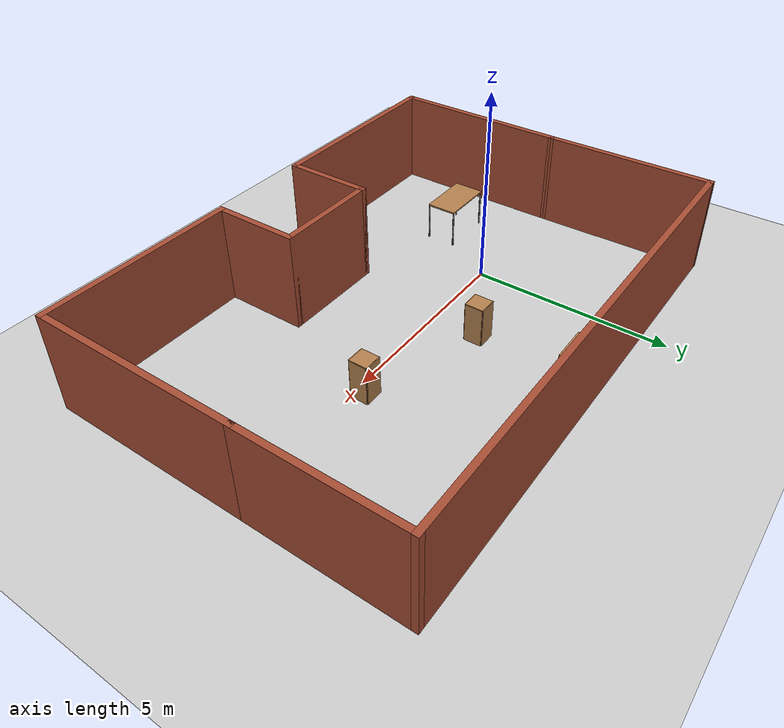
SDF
<sdf version="1.6">
 <world name="default">
  <light name="sun" type="directional">
   <pose>0 0 10 0 -0 0</pose>
   <diffuse>0.8 0.8 0.8 1</diffuse>
   <specular>0.1 0.1 0.1 1</specular>
   <attenuation>
    <range>1000</range>
    <constant>0.9</constant>
    <linear>0.01</linear>
    <quadratic>0.001</quadratic>
   </attenuation>
   <direction>-0.5 0.5 -1</direction>
  </light>
  <model name="ground_plane">
   <static>1</static>
   <link name="link">
    <collision name="collision">
     <geometry><plane><normal>0 0 1</normal><size>100 100</size></plane></geometry>
     <surface><friction><ode><mu>100</mu><mu2>50</mu2></ode></friction></surface>
    </collision>
    <visual name="visual">
     <cast_shadows>0</cast_shadows>
     <geometry><plane><normal>0 0 1</normal><size>100 100</size></plane></geometry>
     <material>
      <script><uri>file://media/materials/scripts/gazebo.material</uri><name>Gazebo/Grey</name></script>
     </material>
    </visual>
   </link>
  </model>
  <gravity>0 0 -9.8</gravity>
  <magnetic_field>6e-06 2.3e-05 -4.2e-05</magnetic_field>
  <atmosphere type="adiabatic"/>
  <physics name="default_physics" default="0" type="ode">
   <max_step_size>0.001</max_step_size>
   <real_time_factor>1</real_time_factor>
   <real_time_update_rate>1000</real_time_update_rate>
  </physics>
  <scene><ambient>0.4 0.4 0.4 1</ambient><background>0.7 0.7 0.7 1</background><shadows>1</shadows></scene>
  <spherical_coordinates>
   <surface_model>EARTH_WGS84</surface_model>
   <latitude_deg>0</latitude_deg>
   <longitude_deg>0</longitude_deg>
   <elevation>0</elevation>
   <heading_deg>0</heading_deg>
  </spherical_coordinates>
  <model name="WorldFour.world">
   <pose>2.80593 -0.15386 0 0 -0 0</pose>
   <link name="Wall_0">
    <collision name="Wall_0_Collision">
     <geometry><box><size>4.75 0.15 2.5</size></box></geometry>
     <pose>0 0 1.25 0 -0 0</pose>
    </collision>
    <visual name="Wall_0_Visual">
     <pose>0 0 1.25 0 -0 0</pose>
     <geometry><box><size>4.75 0.15 2.5</size></box></geometry>
     <material>
      <script><uri>file://media/materials/scripts/gazebo.material</uri><name>Gazebo/Bricks</name></script>
      <ambient>1 1 1 1</ambient>
     </material>
    </visual>
    <pose>-6.24957 -2.15532 0 0 0 -1.5708</pose>
   </link>
   <link name="Wall_1">
    <collision name="Wall_1_Collision">
     <geometry><box><size>5.25 0.15 2.5</size></box></geometry>
     <pose>0 0 1.25 0 -0 0</pose>
    </collision>
    <visual name="Wall_1_Visual">
     <pose>0 0 1.25 0 -0 0</pose>
     <geometry><box><size>5.25 0.15 2.5</size></box></geometry>
     <material>
      <script><uri>file://media/materials/scripts/gazebo.material</uri><name>Gazebo/Bricks</name></script>
      <ambient>1 1 1 1</ambient>
     </material>
    </visual>
    <pose>-3.69957 -4.45532 0 0 -0 0</pose>
   </link>
   <link name="Wall_11">
    <collision name="Wall_11_Collision">
     <geometry><box><size>12.75 0.15 2.5</size></box></geometry>
     <pose>0 0 1.25 0 -0 0</pose>
    </collision>
    <visual name="Wall_11_Visual">
     <pose>0 0 1.25 0 -0 0</pose>
     <geometry><box><size>12.75 0.15 2.5</size></box></geometry>
     <material>
      <script><uri>file://media/materials/scripts/gazebo.material</uri><name>Gazebo/Bricks</name></script>
      <ambient>1 1 1 1</ambient>
     </material>
    </visual>
    <pose>0.000432 4.45445 0 0 -0 3.14159</pose>
   </link>
   <link name="Wall_12">
    <collision name="Wall_12_Collision">
     <geometry><box><size>4.46006 0.15 2.5</size></box></geometry>
     <pose>0 0 1.25 0 -0 0</pose>
    </collision>
    <visual name="Wall_12_Visual">
     <pose>0 0 1.25 0 -0 0</pose>
     <geometry><box><size>4.46006 0.15 2.5</size></box></geometry>
     <material>
      <script><uri>file://media/materials/scripts/gazebo.material</uri><name>Gazebo/Bricks</name></script>
      <ambient>1 1 1 1</ambient>
     </material>
    </visual>
    <pose>-6.27457 2.29957 0 0 0 -1.5592</pose>
   </link>
   <link name="Wall_2">
    <collision name="Wall_2_Collision">
     <geometry><box><size>2.25 0.15 2.5</size></box></geometry>
     <pose>0 0 1.25 0 -0 0</pose>
    </collision>
    <visual name="Wall_2_Visual">
     <pose>0 0 1.25 0 -0 0</pose>
     <geometry><box><size>2.25 0.15 2.5</size></box></geometry>
     <material>
      <script><uri>file://media/materials/scripts/gazebo.material</uri><name>Gazebo/Bricks</name></script>
      <ambient>1 1 1 1</ambient>
     </material>
    </visual>
    <pose>-1.14957 -3.40532 0 0 -0 1.5708</pose>
   </link>
   <link name="Wall_3">
    <collision name="Wall_3_Collision">
     <geometry><box><size>2.75 0.15 2.5</size></box></geometry>
     <pose>0 0 1.25 0 -0 0</pose>
    </collision>
    <visual name="Wall_3_Visual">
     <pose>0 0 1.25 0 -0 0</pose>
     <geometry><box><size>2.75 0.15 2.5</size></box></geometry>
     <material>
      <script><uri>file://media/materials/scripts/gazebo.material</uri><name>Gazebo/Bricks</name></script>
      <ambient>1 1 1 1</ambient>
     </material>
    </visual>
    <pose>0.150432 -2.35532 0 0 -0 0</pose>
   </link>
   <link name="Wall_4">
    <collision name="Wall_4_Collision">
     <geometry><box><size>2.25 0.15 2.5</size></box></geometry>
     <pose>0 0 1.25 0 -0 0</pose>
    </collision>
    <visual name="Wall_4_Visual">
     <pose>0 0 1.25 0 -0 0</pose>
     <geometry><box><size>2.25 0.15 2.5</size></box></geometry>
     <material>
      <script><uri>file://media/materials/scripts/gazebo.material</uri><name>Gazebo/Bricks</name></script>
      <ambient>1 1 1 1</ambient>
     </material>
    </visual>
    <pose>1.45043 -3.40532 0 0 0 -1.5708</pose>
   </link>
   <link name="Wall_5">
    <collision name="Wall_5_Collision">
     <geometry><box><size>5 0.15 2.5</size></box></geometry>
     <pose>0 0 1.25 0 -0 0</pose>
    </collision>
    <visual name="Wall_5_Visual">
     <pose>0 0 1.25 0 -0 0</pose>
     <geometry><box><size>5 0.15 2.5</size></box></geometry>
     <material>
      <script><uri>file://media/materials/scripts/gazebo.material</uri><name>Gazebo/Bricks</name></script>
      <ambient>1 1 1 1</ambient>
     </material>
    </visual>
    <pose>3.87543 -4.45532 0 0 -0 0</pose>
   </link>
   <link name="Wall_6">
    <collision name="Wall_6_Collision">
     <geometry><box><size>5.25 0.15 2.5</size></box></geometry>
     <pose>0 0 1.25 0 -0 0</pose>
    </collision>
    <visual name="Wall_6_Visual">
     <pose>0 0 1.25 0 -0 0</pose>
     <geometry><box><size>5.25 0.15 2.5</size></box></geometry>
     <material>
      <script><uri>file://media/materials/scripts/gazebo.material</uri><name>Gazebo/Bricks</name></script>
      <ambient>1 1 1 1</ambient>
     </material>
    </visual>
    <pose>6.30043 -1.90532 0 0 -0 1.5708</pose>
   </link>
   <link name="Wall_8">
    <collision name="Wall_8_Collision">
     <geometry><box><size>3.95977 0.15 2.5</size></box></geometry>
     <pose>0 0 1.25 0 -0 0</pose>
    </collision>
    <visual name="Wall_8_Visual">
     <pose>0 0 1.25 0 -0 0</pose>
     <geometry><box><size>3.95977 0.15 2.5</size></box></geometry>
     <material>
      <script><uri>file://media/materials/scripts/gazebo.material</uri><name>Gazebo/Bricks</name></script>
      <ambient>1 1 1 1</ambient>
     </material>
    </visual>
    <pose>6.30043 2.54957 0 0 -0 1.5708</pose>
   </link>
   <static>1</static>
  </model>
  <model name="bookshelf">
   <static>1</static>
   <link name="link">
    <inertial><mass>1</mass></inertial>
    <collision name="back">
     <pose>0 0.005 0.6 0 -0 0</pose>
     <geometry><box><size>0.9 0.01 1.2</size></box></geometry>
    </collision>
    <visual name="visual1">
     <pose>0 0.005 0.6 0 -0 0</pose>
     <geometry><box><size>0.9 0.01 1.2</size></box></geometry>
     <material>
      <script><uri>file://media/materials/scripts/gazebo.material</uri><name>Gazebo/Wood</name></script>
     </material>
    </visual>
    <collision name="left_side">
     <pose>0.45 -0.195 0.6 0 -0 0</pose>
     <geometry><box><size>0.02 0.4 1.2</size></box></geometry>
    </collision>
    <visual name="visual2">
     <pose>0.45 -0.195 0.6 0 -0 0</pose>
     <geometry><box><size>0.02 0.4 1.2</size></box></geometry>
     <material>
      <script><uri>file://media/materials/scripts/gazebo.material</uri><name>Gazebo/Wood</name></script>
     </material>
    </visual>
    <collision name="right_side">
     <pose>-0.45 -0.195 0.6 0 -0 0</pose>
     <geometry><box><size>0.02 0.4 1.2</size></box></geometry>
    </collision>
    <visual name="visual3">
     <pose>-0.45 -0.195 0.6 0 -0 0</pose>
     <geometry><box><size>0.02 0.4 1.2</size></box></geometry>
     <material>
      <script><uri>file://media/materials/scripts/gazebo.material</uri><name>Gazebo/Wood</name></script>
     </material>
    </visual>
    <collision name="bottom">
     <pose>0 -0.195 0.03 0 -0 0</pose>
     <geometry><box><size>0.88 0.4 0.06</size></box></geometry>
    </collision>
    <visual name="visual4">
     <pose>0 -0.195 0.03 0 -0 0</pose>
     <geometry><box><size>0.88 0.4 0.06</size></box></geometry>
     <material>
      <script><uri>file://media/materials/scripts/gazebo.material</uri><name>Gazebo/Wood</name></script>
     </material>
    </visual>
    <collision name="top">
     <pose>0 -0.195 1.19 0 -0 0</pose>
     <geometry><box><size>0.88 0.4 0.02</size></box></geometry>
    </collision>
    <visual name="visual5">
     <pose>0 -0.195 1.19 0 -0 0</pose>
     <geometry><box><size>0.88 0.4 0.02</size></box></geometry>
     <material>
      <script><uri>file://media/materials/scripts/gazebo.material</uri><name>Gazebo/Wood</name></script>
     </material>
    </visual>
    <collision name="low_shelf">
     <pose>0 -0.195 0.43 0 -0 0</pose>
     <geometry><box><size>0.88 0.4 0.02</size></box></geometry>
    </collision>
    <visual name="visual6">
     <pose>0 -0.195 0.43 0 -0 0</pose>
     <geometry><box><size>0.88 0.4 0.02</size></box></geometry>
     <material>
      <script><uri>file://media/materials/scripts/gazebo.material</uri><name>Gazebo/Wood</name></script>
     </material>
    </visual>
    <collision name="high_shelf">
     <pose>0 -0.195 0.8 0 -0 0</pose>
     <geometry><box><size>0.88 0.4 0.02</size></box></geometry>
    </collision>
    <visual name="visual7">
     <pose>0 -0.195 0.8 0 -0 0</pose>
     <geometry><box><size>0.88 0.4 0.02</size></box></geometry>
     <material>
      <script><uri>file://media/materials/scripts/gazebo.material</uri><name>Gazebo/Wood</name></script>
     </material>
    </visual>
   </link>
   <pose>2.54792 4.01269 0 0 -0 0</pose>
  </model>
  <model name="cabinet">
   <static>1</static>
   <link name="cabinet_bottom_plate">
    <inertial>
     <pose>0 0 -1 0 -0 0</pose>
     <inertia><ixx>2.05</ixx><ixy>0</ixy><ixz>0</ixz><iyy>2.05</iyy><iyz>0</iyz><izz>2.05</izz></inertia>
     <mass>25</mass>
    </inertial>
    <collision name="cabinet_bottom_plate_geom">
     <pose>0 0 0.01 0 -0 0</pose>
     <geometry><box><size>0.45 0.45 0.02</size></box></geometry>
    </collision>
    <visual name="cabinet_bottom_plate_geom_visual">
     <pose>0 0 0.01 0 -0 0</pose>
     <geometry><box><size>0.45 0.45 0.02</size></box></geometry>
     <material>
      <script><uri>file://media/materials/scripts/gazebo.material</uri><name>Gazebo/Wood</name></script>
     </material>
    </visual>
    <collision name="cabinet_bottom_plate_geom_cabinet_back_plate">
     <pose>0.235 0 0.51 0 -0 0</pose>
     <geometry><box><size>0.02 0.45 1.02</size></box></geometry>
    </collision>
    <visual name="cabinet_bottom_plate_geom_cabinet_back_plate_visual">
     <pose>0.235 0 0.51 0 -0 0</pose>
     <geometry><box><size>0.02 0.45 1.02</size></box></geometry>
     <material>
      <script><uri>file://media/materials/scripts/gazebo.material</uri><name>Gazebo/Wood</name></script>
     </material>
    </visual>
    <collision name="cabinet_bottom_plate_geom_cabinet_left_plate">
     <pose>0 0.235 0.51 0 -0 0</pose>
     <geometry><box><size>0.45 0.02 1.02</size></box></geometry>
    </collision>
    <visual name="cabinet_bottom_plate_geom_cabinet_left_plate_visual">
     <pose>0 0.235 0.51 0 -0 0</pose>
     <geometry><box><size>0.45 0.02 1.02</size></box></geometry>
     <material>
      <script><uri>file://media/materials/scripts/gazebo.material</uri><name>Gazebo/Wood</name></script>
     </material>
    </visual>
    <collision name="cabinet_bottom_plate_geom_cabinet_middle_plate">
     <pose>0 0 0.51 0 -0 0</pose>
     <geometry><box><size>0.45 0.45 0.02</size></box></geometry>
    </collision>
    <visual name="cabinet_bottom_plate_geom_cabinet_middle_plate_visual">
     <pose>0 0 0.51 0 -0 0</pose>
     <geometry><box><size>0.45 0.45 0.02</size></box></geometry>
     <material>
      <script><uri>file://media/materials/scripts/gazebo.material</uri><name>Gazebo/Wood</name></script>
     </material>
    </visual>
    <collision name="cabinet_bottom_plate_geom_cabinet_right_plate">
     <pose>0 -0.235 0.51 0 -0 0</pose>
     <geometry><box><size>0.45 0.02 1.02</size></box></geometry>
    </collision>
    <visual name="cabinet_bottom_plate_geom_cabinet_right_plate_visual">
     <pose>0 -0.235 0.51 0 -0 0</pose>
     <geometry><box><size>0.45 0.02 1.02</size></box></geometry>
     <material>
      <script><uri>file://media/materials/scripts/gazebo.material</uri><name>Gazebo/Wood</name></script>
     </material>
    </visual>
    <collision name="cabinet_bottom_plate_geom_cabinet_top_plate">
     <pose>0 0 1.01 0 -0 0</pose>
     <geometry><box><size>0.45 0.45 0.02</size></box></geometry>
    </collision>
    <visual name="cabinet_bottom_plate_geom_cabinet_top_plate_visual">
     <pose>0 0 1.01 0 -0 0</pose>
     <geometry><box><size>0.45 0.45 0.02</size></box></geometry>
     <material>
      <script><uri>file://media/materials/scripts/gazebo.material</uri><name>Gazebo/Wood</name></script>
     </material>
    </visual>
   </link>
   <pose>2.21083 1.22901 0 0 -0 0</pose>
  </model>
  <model name="cabinet_0">
   <static>1</static>
   <link name="cabinet_bottom_plate">
    <inertial>
     <pose>0 0 -1 0 -0 0</pose>
     <inertia><ixx>2.05</ixx><ixy>0</ixy><ixz>0</ixz><iyy>2.05</iyy><iyz>0</iyz><izz>2.05</izz></inertia>
     <mass>25</mass>
    </inertial>
    <collision name="cabinet_bottom_plate_geom">
     <pose>0 0 0.01 0 -0 0</pose>
     <geometry><box><size>0.45 0.45 0.02</size></box></geometry>
    </collision>
    <visual name="cabinet_bottom_plate_geom_visual">
     <pose>0 0 0.01 0 -0 0</pose>
     <geometry><box><size>0.45 0.45 0.02</size></box></geometry>
     <material>
      <script><uri>file://media/materials/scripts/gazebo.material</uri><name>Gazebo/Wood</name></script>
     </material>
    </visual>
    <collision name="cabinet_bottom_plate_geom_cabinet_back_plate">
     <pose>0.235 0 0.51 0 -0 0</pose>
     <geometry><box><size>0.02 0.45 1.02</size></box></geometry>
    </collision>
    <visual name="cabinet_bottom_plate_geom_cabinet_back_plate_visual">
     <pose>0.235 0 0.51 0 -0 0</pose>
     <geometry><box><size>0.02 0.45 1.02</size></box></geometry>
     <material>
      <script><uri>file://media/materials/scripts/gazebo.material</uri><name>Gazebo/Wood</name></script>
     </material>
    </visual>
    <collision name="cabinet_bottom_plate_geom_cabinet_left_plate">
     <pose>0 0.235 0.51 0 -0 0</pose>
     <geometry><box><size>0.45 0.02 1.02</size></box></geometry>
    </collision>
    <visual name="cabinet_bottom_plate_geom_cabinet_left_plate_visual">
     <pose>0 0.235 0.51 0 -0 0</pose>
     <geometry><box><size>0.45 0.02 1.02</size></box></geometry>
     <material>
      <script><uri>file://media/materials/scripts/gazebo.material</uri><name>Gazebo/Wood</name></script>
     </material>
    </visual>
    <collision name="cabinet_bottom_plate_geom_cabinet_middle_plate">
     <pose>0 0 0.51 0 -0 0</pose>
     <geometry><box><size>0.45 0.45 0.02</size></box></geometry>
    </collision>
    <visual name="cabinet_bottom_plate_geom_cabinet_middle_plate_visual">
     <pose>0 0 0.51 0 -0 0</pose>
     <geometry><box><size>0.45 0.45 0.02</size></box></geometry>
     <material>
      <script><uri>file://media/materials/scripts/gazebo.material</uri><name>Gazebo/Wood</name></script>
     </material>
    </visual>
    <collision name="cabinet_bottom_plate_geom_cabinet_right_plate">
     <pose>0 -0.235 0.51 0 -0 0</pose>
     <geometry><box><size>0.45 0.02 1.02</size></box></geometry>
    </collision>
    <visual name="cabinet_bottom_plate_geom_cabinet_right_plate_visual">
     <pose>0 -0.235 0.51 0 -0 0</pose>
     <geometry><box><size>0.45 0.02 1.02</size></box></geometry>
     <material>
      <script><uri>file://media/materials/scripts/gazebo.material</uri><name>Gazebo/Wood</name></script>
     </material>
    </visual>
    <collision name="cabinet_bottom_plate_geom_cabinet_top_plate">
     <pose>0 0 1.01 0 -0 0</pose>
     <geometry><box><size>0.45 0.45 0.02</size></box></geometry>
    </collision>
    <visual name="cabinet_bottom_plate_geom_cabinet_top_plate_visual">
     <pose>0 0 1.01 0 -0 0</pose>
     <geometry><box><size>0.45 0.45 0.02</size></box></geometry>
     <material>
      <script><uri>file://media/materials/scripts/gazebo.material</uri><name>Gazebo/Wood</name></script>
     </material>
    </visual>
   </link>
   <pose>5.22481 0.253123 0 0 -0 0</pose>
  </model>
  <model name="table">
   <static>0</static>
   <link name="link">
    <collision name="surface">
     <pose>0 0 1 0 -0 0</pose>
     <geometry><box><size>1.5 0.8 0.03</size></box></geometry>
     <surface><friction><ode><mu>0.6</mu><mu2>0.6</mu2></ode></friction></surface>
    </collision>
    <visual name="visual1">
     <pose>0 0 1 0 -0 0</pose>
     <geometry><box><size>1.4 0.8 0.04</size></box></geometry>
     <material>
      <script><uri>file://media/materials/scripts/gazebo.material</uri><name>Gazebo/Wood</name></script>
     </material>
    </visual>
    <collision name="front_left_leg">
     <pose>0.68 0.38 0.5 0 -0 0</pose>
     <geometry><cylinder><radius>0.02</radius><length>1</length></cylinder></geometry>
    </collision>
    <visual name="front_left_leg">
     <pose>0.68 0.38 0.5 0 -0 0</pose>
     <geometry><cylinder><radius>0.02</radius><length>1</length></cylinder></geometry>
     <material>
      <script><uri>file://media/materials/scripts/gazebo.material</uri><name>Gazebo/Grey</name></script>
     </material>
    </visual>
    <collision name="front_right_leg">
     <pose>0.68 -0.38 0.5 0 -0 0</pose>
     <geometry><cylinder><radius>0.02</radius><length>1</length></cylinder></geometry>
    </collision>
    <visual name="front_right_leg">
     <pose>0.68 -0.38 0.5 0 -0 0</pose>
     <geometry><cylinder><radius>0.02</radius><length>1</length></cylinder></geometry>
     <material>
      <script><uri>file://media/materials/scripts/gazebo.material</uri><name>Gazebo/Grey</name></script>
     </material>
    </visual>
    <collision name="back_right_leg">
     <pose>-0.68 -0.38 0.5 0 -0 0</pose>
     <geometry><cylinder><radius>0.02</radius><length>1</length></cylinder></geometry>
    </collision>
    <visual name="back_right_leg">
     <pose>-0.68 -0.38 0.5 0 -0 0</pose>
     <geometry><cylinder><radius>0.02</radius><length>1</length></cylinder></geometry>
     <material>
      <script><uri>file://media/materials/scripts/gazebo.material</uri><name>Gazebo/Grey</name></script>
     </material>
    </visual>
    <collision name="back_left_leg">
     <pose>-0.68 0.38 0.5 0 -0 0</pose>
     <geometry><cylinder><radius>0.02</radius><length>1</length></cylinder></geometry>
    </collision>
    <visual name="back_left_leg">
     <pose>-0.68 0.38 0.5 0 -0 0</pose>
     <geometry><cylinder><radius>0.02</radius><length>1</length></cylinder></geometry>
     <material>
      <script><uri>file://media/materials/scripts/gazebo.material</uri><name>Gazebo/Grey</name></script>
     </material>
    </visual>
    <inertial>
     <inertia><ixx>1</ixx><ixy>0</ixy><ixz>0</ixz><iyy>1</iyy><iyz>0</iyz><izz>1</izz></inertia>
     <mass>1</mass>
    </inertial>
   </link>
   <pose>-1.43257 -1.74671 -1e-06 0 1e-06 0</pose>
  </model>
  <model name="bookshelf_0">
   <static>1</static>
   <link name="link">
    <inertial><mass>1</mass></inertial>
    <collision name="back">
     <pose>0 0.005 0.6 0 -0 0</pose>
     <geometry><box><size>0.9 0.01 1.2</size></box></geometry>
    </collision>
    <visual name="visual1">
     <pose>0 0.005 0.6 0 -0 0</pose>
     <geometry><box><size>0.9 0.01 1.2</size></box></geometry>
     <material>
      <script><uri>file://media/materials/scripts/gazebo.material</uri><name>Gazebo/Wood</name></script>
     </material>
    </visual>
    <collision name="left_side">
     <pose>0.45 -0.195 0.6 0 -0 0</pose>
     <geometry><box><size>0.02 0.4 1.2</size></box></geometry>
    </collision>
    <visual name="visual2">
     <pose>0.45 -0.195 0.6 0 -0 0</pose>
     <geometry><box><size>0.02 0.4 1.2</size></box></geometry>
     <material>
      <script><uri>file://media/materials/scripts/gazebo.material</uri><name>Gazebo/Wood</name></script>
     </material>
    </visual>
    <collision name="right_side">
     <pose>-0.45 -0.195 0.6 0 -0 0</pose>
     <geometry><box><size>0.02 0.4 1.2</size></box></geometry>
    </collision>
    <visual name="visual3">
     <pose>-0.45 -0.195 0.6 0 -0 0</pose>
     <geometry><box><size>0.02 0.4 1.2</size></box></geometry>
     <material>
      <script><uri>file://media/materials/scripts/gazebo.material</uri><name>Gazebo/Wood</name></script>
     </material>
    </visual>
    <collision name="bottom">
     <pose>0 -0.195 0.03 0 -0 0</pose>
     <geometry><box><size>0.88 0.4 0.06</size></box></geometry>
    </collision>
    <visual name="visual4">
     <pose>0 -0.195 0.03 0 -0 0</pose>
     <geometry><box><size>0.88 0.4 0.06</size></box></geometry>
     <material>
      <script><uri>file://media/materials/scripts/gazebo.material</uri><name>Gazebo/Wood</name></script>
     </material>
    </visual>
    <collision name="top">
     <pose>0 -0.195 1.19 0 -0 0</pose>
     <geometry><box><size>0.88 0.4 0.02</size></box></geometry>
    </collision>
    <visual name="visual5">
     <pose>0 -0.195 1.19 0 -0 0</pose>
     <geometry><box><size>0.88 0.4 0.02</size></box></geometry>
     <material>
      <script><uri>file://media/materials/scripts/gazebo.material</uri><name>Gazebo/Wood</name></script>
     </material>
    </visual>
    <collision name="low_shelf">
     <pose>0 -0.195 0.43 0 -0 0</pose>
     <geometry><box><size>0.88 0.4 0.02</size></box></geometry>
    </collision>
    <visual name="visual6">
     <pose>0 -0.195 0.43 0 -0 0</pose>
     <geometry><box><size>0.88 0.4 0.02</size></box></geometry>
     <material>
      <script><uri>file://media/materials/scripts/gazebo.material</uri><name>Gazebo/Wood</name></script>
     </material>
    </visual>
    <collision name="high_shelf">
     <pose>0 -0.195 0.8 0 -0 0</pose>
     <geometry><box><size>0.88 0.4 0.02</size></box></geometry>
    </collision>
    <visual name="visual7">
     <pose>0 -0.195 0.8 0 -0 0</pose>
     <geometry><box><size>0.88 0.4 0.02</size></box></geometry>
     <material>
      <script><uri>file://media/materials/scripts/gazebo.material</uri><name>Gazebo/Wood</name></script>
     </material>
    </visual>
   </link>
   <pose>9.0348 -0.529142 0 0 0 -1.57733</pose>
  </model>
 </world>
</sdf>
